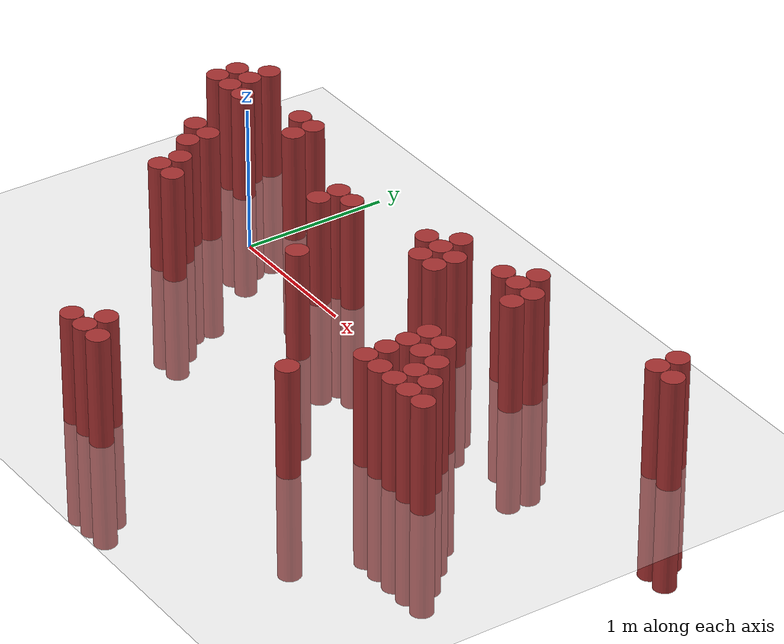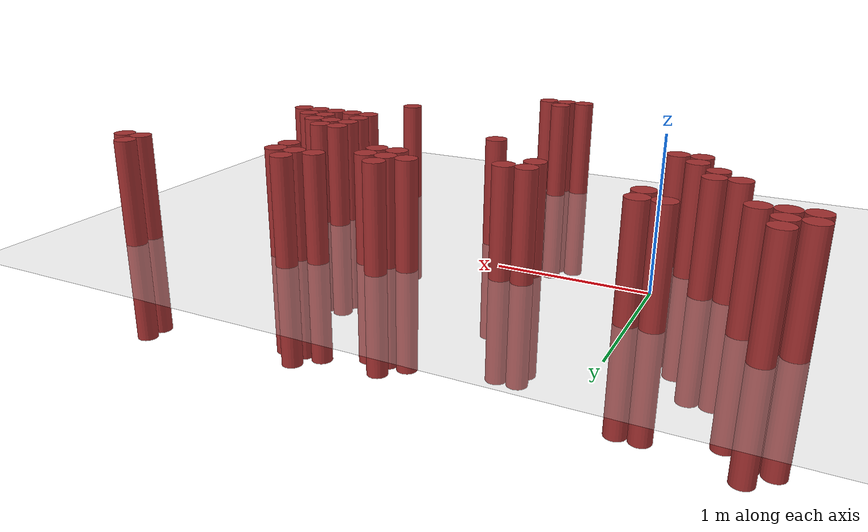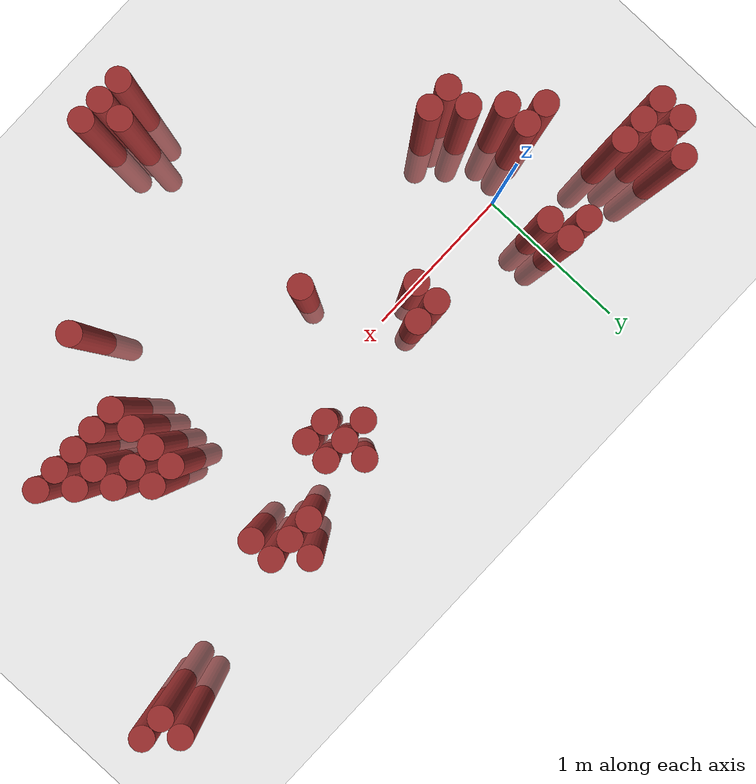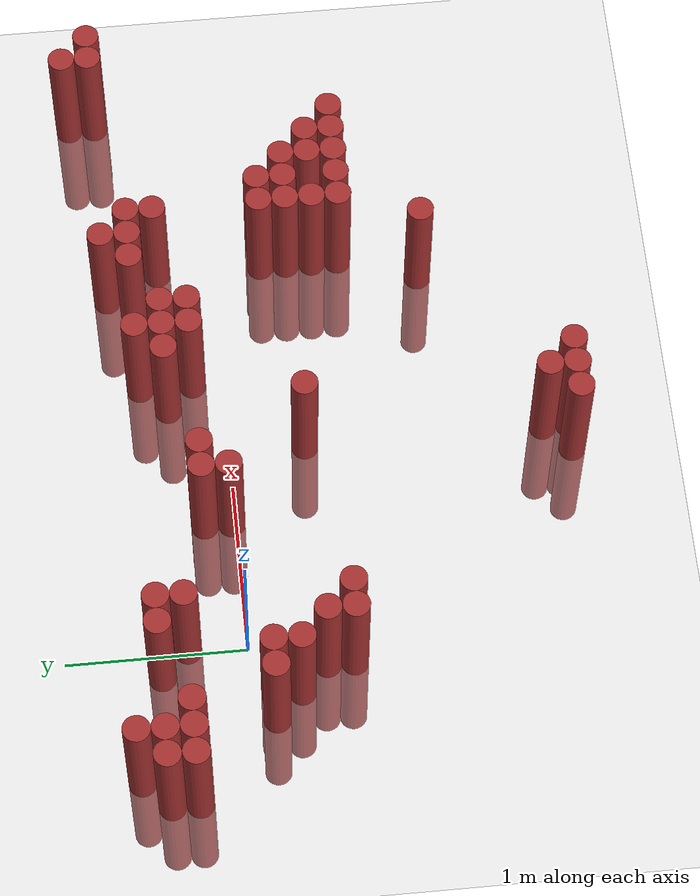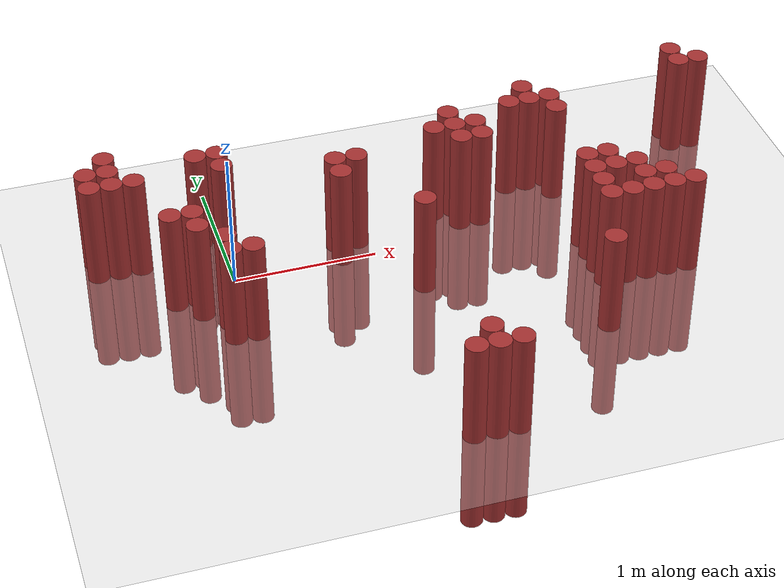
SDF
<sdf version="1.6">
 <world name="default">
  <model name="ground_plane">
   <static>1</static>
   <link name="link">
    <collision name="collision">
     <geometry><plane><normal>0 0 1</normal><size>100 100</size></plane></geometry>
     <surface><friction><ode><mu>100</mu><mu2>50</mu2></ode></friction></surface>
    </collision>
    <visual name="visual">
     <cast_shadows>0</cast_shadows>
     <geometry><plane><normal>0 0 1</normal><size>100 100</size></plane></geometry>
     <material>
      <script><uri>file://media/materials/scripts/gazebo.material</uri><name>Gazebo/Grey</name></script>
     </material>
    </visual>
   </link>
  </model>
  <model name="unit_cylinder_355">
   <static>1</static>
   <pose>-0.875000 0.325000 0.000000 0.000000 0.000000 0.000000</pose>
   <link name="link">
    <inertial>
     <mass>1</mass>
     <inertia><ixx>0.145833</ixx><ixy>0</ixy><ixz>0</ixz><iyy>0.145833</iyy><iyz>0</iyz><izz>0.125</izz></inertia>
    </inertial>
    <collision name="collision">
     <geometry><cylinder><radius>0.075000</radius><length>1.5</length></cylinder></geometry>
    </collision>
    <visual name="visual">
     <geometry><cylinder><radius>0.075000</radius><length>1.5</length></cylinder></geometry>
     <material>
      <ambient>0.648000 0.192000 0.192000 1</ambient>
      <diffuse>0.648000 0.192000 0.192000 1</diffuse>
     </material>
     <material>
      <script><name>Gazebo/Grey</name><uri>file://media/materials/scripts/gazebo.material</uri></script>
     </material>
    </visual>
   </link>
  </model>
  <model name="unit_cylinder_356">
   <static>1</static>
   <pose>-0.875000 0.475000 0.000000 0.000000 0.000000 0.000000</pose>
   <link name="link">
    <inertial>
     <mass>1</mass>
     <inertia><ixx>0.145833</ixx><ixy>0</ixy><ixz>0</ixz><iyy>0.145833</iyy><iyz>0</iyz><izz>0.125</izz></inertia>
    </inertial>
    <collision name="collision">
     <geometry><cylinder><radius>0.075000</radius><length>1.5</length></cylinder></geometry>
    </collision>
    <visual name="visual">
     <geometry><cylinder><radius>0.075000</radius><length>1.5</length></cylinder></geometry>
     <material>
      <ambient>0.648000 0.192000 0.192000 1</ambient>
      <diffuse>0.648000 0.192000 0.192000 1</diffuse>
     </material>
     <material>
      <script><name>Gazebo/Grey</name><uri>file://media/materials/scripts/gazebo.material</uri></script>
     </material>
    </visual>
   </link>
  </model>
  <model name="unit_cylinder_358">
   <static>1</static>
   <pose>-0.725000 0.325000 0.000000 0.000000 0.000000 0.000000</pose>
   <link name="link">
    <inertial>
     <mass>1</mass>
     <inertia><ixx>0.145833</ixx><ixy>0</ixy><ixz>0</ixz><iyy>0.145833</iyy><iyz>0</iyz><izz>0.125</izz></inertia>
    </inertial>
    <collision name="collision">
     <geometry><cylinder><radius>0.075000</radius><length>1.5</length></cylinder></geometry>
    </collision>
    <visual name="visual">
     <geometry><cylinder><radius>0.075000</radius><length>1.5</length></cylinder></geometry>
     <material>
      <ambient>0.648000 0.192000 0.192000 1</ambient>
      <diffuse>0.648000 0.192000 0.192000 1</diffuse>
     </material>
     <material>
      <script><name>Gazebo/Grey</name><uri>file://media/materials/scripts/gazebo.material</uri></script>
     </material>
    </visual>
   </link>
  </model>
  <model name="unit_cylinder_359">
   <static>1</static>
   <pose>-0.725000 0.475000 0.000000 0.000000 0.000000 0.000000</pose>
   <link name="link">
    <inertial>
     <mass>1</mass>
     <inertia><ixx>0.145833</ixx><ixy>0</ixy><ixz>0</ixz><iyy>0.145833</iyy><iyz>0</iyz><izz>0.125</izz></inertia>
    </inertial>
    <collision name="collision">
     <geometry><cylinder><radius>0.075000</radius><length>1.5</length></cylinder></geometry>
    </collision>
    <visual name="visual">
     <geometry><cylinder><radius>0.075000</radius><length>1.5</length></cylinder></geometry>
     <material>
      <ambient>0.648000 0.192000 0.192000 1</ambient>
      <diffuse>0.648000 0.192000 0.192000 1</diffuse>
     </material>
     <material>
      <script><name>Gazebo/Grey</name><uri>file://media/materials/scripts/gazebo.material</uri></script>
     </material>
    </visual>
   </link>
  </model>
  <model name="unit_cylinder_360">
   <static>1</static>
   <pose>-0.725000 0.625000 0.000000 0.000000 0.000000 0.000000</pose>
   <link name="link">
    <inertial>
     <mass>1</mass>
     <inertia><ixx>0.145833</ixx><ixy>0</ixy><ixz>0</ixz><iyy>0.145833</iyy><iyz>0</iyz><izz>0.125</izz></inertia>
    </inertial>
    <collision name="collision">
     <geometry><cylinder><radius>0.075000</radius><length>1.5</length></cylinder></geometry>
    </collision>
    <visual name="visual">
     <geometry><cylinder><radius>0.075000</radius><length>1.5</length></cylinder></geometry>
     <material>
      <ambient>0.648000 0.192000 0.192000 1</ambient>
      <diffuse>0.648000 0.192000 0.192000 1</diffuse>
     </material>
     <material>
      <script><name>Gazebo/Grey</name><uri>file://media/materials/scripts/gazebo.material</uri></script>
     </material>
    </visual>
   </link>
  </model>
  <model name="unit_cylinder_363">
   <static>1</static>
   <pose>-0.575000 0.325000 0.000000 0.000000 0.000000 0.000000</pose>
   <link name="link">
    <inertial>
     <mass>1</mass>
     <inertia><ixx>0.145833</ixx><ixy>0</ixy><ixz>0</ixz><iyy>0.145833</iyy><iyz>0</iyz><izz>0.125</izz></inertia>
    </inertial>
    <collision name="collision">
     <geometry><cylinder><radius>0.075000</radius><length>1.5</length></cylinder></geometry>
    </collision>
    <visual name="visual">
     <geometry><cylinder><radius>0.075000</radius><length>1.5</length></cylinder></geometry>
     <material>
      <ambient>0.648000 0.192000 0.192000 1</ambient>
      <diffuse>0.648000 0.192000 0.192000 1</diffuse>
     </material>
     <material>
      <script><name>Gazebo/Grey</name><uri>file://media/materials/scripts/gazebo.material</uri></script>
     </material>
    </visual>
   </link>
  </model>
  <model name="unit_cylinder_364">
   <static>1</static>
   <pose>-0.425000 -0.125000 0.000000 0.000000 0.000000 0.000000</pose>
   <link name="link">
    <inertial>
     <mass>1</mass>
     <inertia><ixx>0.145833</ixx><ixy>0</ixy><ixz>0</ixz><iyy>0.145833</iyy><iyz>0</iyz><izz>0.125</izz></inertia>
    </inertial>
    <collision name="collision">
     <geometry><cylinder><radius>0.075000</radius><length>1.5</length></cylinder></geometry>
    </collision>
    <visual name="visual">
     <geometry><cylinder><radius>0.075000</radius><length>1.5</length></cylinder></geometry>
     <material>
      <ambient>0.648000 0.192000 0.192000 1</ambient>
      <diffuse>0.648000 0.192000 0.192000 1</diffuse>
     </material>
     <material>
      <script><name>Gazebo/Grey</name><uri>file://media/materials/scripts/gazebo.material</uri></script>
     </material>
    </visual>
   </link>
  </model>
  <model name="unit_cylinder_365">
   <static>1</static>
   <pose>-0.275000 -0.275000 0.000000 0.000000 0.000000 0.000000</pose>
   <link name="link">
    <inertial>
     <mass>1</mass>
     <inertia><ixx>0.145833</ixx><ixy>0</ixy><ixz>0</ixz><iyy>0.145833</iyy><iyz>0</iyz><izz>0.125</izz></inertia>
    </inertial>
    <collision name="collision">
     <geometry><cylinder><radius>0.075000</radius><length>1.5</length></cylinder></geometry>
    </collision>
    <visual name="visual">
     <geometry><cylinder><radius>0.075000</radius><length>1.5</length></cylinder></geometry>
     <material>
      <ambient>0.648000 0.192000 0.192000 1</ambient>
      <diffuse>0.648000 0.192000 0.192000 1</diffuse>
     </material>
     <material>
      <script><name>Gazebo/Grey</name><uri>file://media/materials/scripts/gazebo.material</uri></script>
     </material>
    </visual>
   </link>
  </model>
  <model name="unit_cylinder_366">
   <static>1</static>
   <pose>-0.275000 -0.125000 0.000000 0.000000 0.000000 0.000000</pose>
   <link name="link">
    <inertial>
     <mass>1</mass>
     <inertia><ixx>0.145833</ixx><ixy>0</ixy><ixz>0</ixz><iyy>0.145833</iyy><iyz>0</iyz><izz>0.125</izz></inertia>
    </inertial>
    <collision name="collision">
     <geometry><cylinder><radius>0.075000</radius><length>1.5</length></cylinder></geometry>
    </collision>
    <visual name="visual">
     <geometry><cylinder><radius>0.075000</radius><length>1.5</length></cylinder></geometry>
     <material>
      <ambient>0.648000 0.192000 0.192000 1</ambient>
      <diffuse>0.648000 0.192000 0.192000 1</diffuse>
     </material>
     <material>
      <script><name>Gazebo/Grey</name><uri>file://media/materials/scripts/gazebo.material</uri></script>
     </material>
    </visual>
   </link>
  </model>
  <model name="unit_cylinder_367">
   <static>1</static>
   <pose>-0.125000 -0.575000 0.000000 0.000000 0.000000 0.000000</pose>
   <link name="link">
    <inertial>
     <mass>1</mass>
     <inertia><ixx>0.145833</ixx><ixy>0</ixy><ixz>0</ixz><iyy>0.145833</iyy><iyz>0</iyz><izz>0.125</izz></inertia>
    </inertial>
    <collision name="collision">
     <geometry><cylinder><radius>0.075000</radius><length>1.5</length></cylinder></geometry>
    </collision>
    <visual name="visual">
     <geometry><cylinder><radius>0.075000</radius><length>1.5</length></cylinder></geometry>
     <material>
      <ambient>0.648000 0.192000 0.192000 1</ambient>
      <diffuse>0.648000 0.192000 0.192000 1</diffuse>
     </material>
     <material>
      <script><name>Gazebo/Grey</name><uri>file://media/materials/scripts/gazebo.material</uri></script>
     </material>
    </visual>
   </link>
  </model>
  <model name="unit_cylinder_368">
   <static>1</static>
   <pose>-0.125000 -0.425000 0.000000 0.000000 0.000000 0.000000</pose>
   <link name="link">
    <inertial>
     <mass>1</mass>
     <inertia><ixx>0.145833</ixx><ixy>0</ixy><ixz>0</ixz><iyy>0.145833</iyy><iyz>0</iyz><izz>0.125</izz></inertia>
    </inertial>
    <collision name="collision">
     <geometry><cylinder><radius>0.075000</radius><length>1.5</length></cylinder></geometry>
    </collision>
    <visual name="visual">
     <geometry><cylinder><radius>0.075000</radius><length>1.5</length></cylinder></geometry>
     <material>
      <ambient>0.648000 0.192000 0.192000 1</ambient>
      <diffuse>0.648000 0.192000 0.192000 1</diffuse>
     </material>
     <material>
      <script><name>Gazebo/Grey</name><uri>file://media/materials/scripts/gazebo.material</uri></script>
     </material>
    </visual>
   </link>
  </model>
  <model name="unit_cylinder_369">
   <static>1</static>
   <pose>-0.125000 0.475000 0.000000 0.000000 0.000000 0.000000</pose>
   <link name="link">
    <inertial>
     <mass>1</mass>
     <inertia><ixx>0.145833</ixx><ixy>0</ixy><ixz>0</ixz><iyy>0.145833</iyy><iyz>0</iyz><izz>0.125</izz></inertia>
    </inertial>
    <collision name="collision">
     <geometry><cylinder><radius>0.075000</radius><length>1.5</length></cylinder></geometry>
    </collision>
    <visual name="visual">
     <geometry><cylinder><radius>0.075000</radius><length>1.5</length></cylinder></geometry>
     <material>
      <ambient>0.648000 0.192000 0.192000 1</ambient>
      <diffuse>0.648000 0.192000 0.192000 1</diffuse>
     </material>
     <material>
      <script><name>Gazebo/Grey</name><uri>file://media/materials/scripts/gazebo.material</uri></script>
     </material>
    </visual>
   </link>
  </model>
  <model name="unit_cylinder_370">
   <static>1</static>
   <pose>0.025000 -0.575000 0.000000 0.000000 0.000000 0.000000</pose>
   <link name="link">
    <inertial>
     <mass>1</mass>
     <inertia><ixx>0.145833</ixx><ixy>0</ixy><ixz>0</ixz><iyy>0.145833</iyy><iyz>0</iyz><izz>0.125</izz></inertia>
    </inertial>
    <collision name="collision">
     <geometry><cylinder><radius>0.075000</radius><length>1.5</length></cylinder></geometry>
    </collision>
    <visual name="visual">
     <geometry><cylinder><radius>0.075000</radius><length>1.5</length></cylinder></geometry>
     <material>
      <ambient>0.648000 0.192000 0.192000 1</ambient>
      <diffuse>0.648000 0.192000 0.192000 1</diffuse>
     </material>
     <material>
      <script><name>Gazebo/Grey</name><uri>file://media/materials/scripts/gazebo.material</uri></script>
     </material>
    </visual>
   </link>
  </model>
  <model name="unit_cylinder_371">
   <static>1</static>
   <pose>0.025000 0.325000 0.000000 0.000000 0.000000 0.000000</pose>
   <link name="link">
    <inertial>
     <mass>1</mass>
     <inertia><ixx>0.145833</ixx><ixy>0</ixy><ixz>0</ixz><iyy>0.145833</iyy><iyz>0</iyz><izz>0.125</izz></inertia>
    </inertial>
    <collision name="collision">
     <geometry><cylinder><radius>0.075000</radius><length>1.5</length></cylinder></geometry>
    </collision>
    <visual name="visual">
     <geometry><cylinder><radius>0.075000</radius><length>1.5</length></cylinder></geometry>
     <material>
      <ambient>0.648000 0.192000 0.192000 1</ambient>
      <diffuse>0.648000 0.192000 0.192000 1</diffuse>
     </material>
     <material>
      <script><name>Gazebo/Grey</name><uri>file://media/materials/scripts/gazebo.material</uri></script>
     </material>
    </visual>
   </link>
  </model>
  <model name="unit_cylinder_372">
   <static>1</static>
   <pose>0.025000 0.475000 0.000000 0.000000 0.000000 0.000000</pose>
   <link name="link">
    <inertial>
     <mass>1</mass>
     <inertia><ixx>0.145833</ixx><ixy>0</ixy><ixz>0</ixz><iyy>0.145833</iyy><iyz>0</iyz><izz>0.125</izz></inertia>
    </inertial>
    <collision name="collision">
     <geometry><cylinder><radius>0.075000</radius><length>1.5</length></cylinder></geometry>
    </collision>
    <visual name="visual">
     <geometry><cylinder><radius>0.075000</radius><length>1.5</length></cylinder></geometry>
     <material>
      <ambient>0.648000 0.192000 0.192000 1</ambient>
      <diffuse>0.648000 0.192000 0.192000 1</diffuse>
     </material>
     <material>
      <script><name>Gazebo/Grey</name><uri>file://media/materials/scripts/gazebo.material</uri></script>
     </material>
    </visual>
   </link>
  </model>
  <model name="unit_cylinder_376">
   <static>1</static>
   <pose>0.775000 0.025000 0.000000 0.000000 0.000000 0.000000</pose>
   <link name="link">
    <inertial>
     <mass>1</mass>
     <inertia><ixx>0.145833</ixx><ixy>0</ixy><ixz>0</ixz><iyy>0.145833</iyy><iyz>0</iyz><izz>0.125</izz></inertia>
    </inertial>
    <collision name="collision">
     <geometry><cylinder><radius>0.075000</radius><length>1.5</length></cylinder></geometry>
    </collision>
    <visual name="visual">
     <geometry><cylinder><radius>0.075000</radius><length>1.5</length></cylinder></geometry>
     <material>
      <ambient>0.648000 0.192000 0.192000 1</ambient>
      <diffuse>0.648000 0.192000 0.192000 1</diffuse>
     </material>
     <material>
      <script><name>Gazebo/Grey</name><uri>file://media/materials/scripts/gazebo.material</uri></script>
     </material>
    </visual>
   </link>
  </model>
  <model name="unit_cylinder_377">
   <static>1</static>
   <pose>0.775000 0.175000 0.000000 0.000000 0.000000 0.000000</pose>
   <link name="link">
    <inertial>
     <mass>1</mass>
     <inertia><ixx>0.145833</ixx><ixy>0</ixy><ixz>0</ixz><iyy>0.145833</iyy><iyz>0</iyz><izz>0.125</izz></inertia>
    </inertial>
    <collision name="collision">
     <geometry><cylinder><radius>0.075000</radius><length>1.5</length></cylinder></geometry>
    </collision>
    <visual name="visual">
     <geometry><cylinder><radius>0.075000</radius><length>1.5</length></cylinder></geometry>
     <material>
      <ambient>0.648000 0.192000 0.192000 1</ambient>
      <diffuse>0.648000 0.192000 0.192000 1</diffuse>
     </material>
     <material>
      <script><name>Gazebo/Grey</name><uri>file://media/materials/scripts/gazebo.material</uri></script>
     </material>
    </visual>
   </link>
  </model>
  <model name="unit_cylinder_379">
   <static>1</static>
   <pose>0.925000 0.175000 0.000000 0.000000 0.000000 0.000000</pose>
   <link name="link">
    <inertial>
     <mass>1</mass>
     <inertia><ixx>0.145833</ixx><ixy>0</ixy><ixz>0</ixz><iyy>0.145833</iyy><iyz>0</iyz><izz>0.125</izz></inertia>
    </inertial>
    <collision name="collision">
     <geometry><cylinder><radius>0.075000</radius><length>1.5</length></cylinder></geometry>
    </collision>
    <visual name="visual">
     <geometry><cylinder><radius>0.075000</radius><length>1.5</length></cylinder></geometry>
     <material>
      <ambient>0.648000 0.192000 0.192000 1</ambient>
      <diffuse>0.648000 0.192000 0.192000 1</diffuse>
     </material>
     <material>
      <script><name>Gazebo/Grey</name><uri>file://media/materials/scripts/gazebo.material</uri></script>
     </material>
    </visual>
   </link>
  </model>
  <model name="unit_cylinder_380">
   <static>1</static>
   <pose>1.075000 -1.925000 0.000000 0.000000 0.000000 0.000000</pose>
   <link name="link">
    <inertial>
     <mass>1</mass>
     <inertia><ixx>0.145833</ixx><ixy>0</ixy><ixz>0</ixz><iyy>0.145833</iyy><iyz>0</iyz><izz>0.125</izz></inertia>
    </inertial>
    <collision name="collision">
     <geometry><cylinder><radius>0.075000</radius><length>1.5</length></cylinder></geometry>
    </collision>
    <visual name="visual">
     <geometry><cylinder><radius>0.075000</radius><length>1.5</length></cylinder></geometry>
     <material>
      <ambient>0.648000 0.192000 0.192000 1</ambient>
      <diffuse>0.648000 0.192000 0.192000 1</diffuse>
     </material>
     <material>
      <script><name>Gazebo/Grey</name><uri>file://media/materials/scripts/gazebo.material</uri></script>
     </material>
    </visual>
   </link>
  </model>
  <model name="unit_cylinder_381">
   <static>1</static>
   <pose>1.225000 -1.925000 0.000000 0.000000 0.000000 0.000000</pose>
   <link name="link">
    <inertial>
     <mass>1</mass>
     <inertia><ixx>0.145833</ixx><ixy>0</ixy><ixz>0</ixz><iyy>0.145833</iyy><iyz>0</iyz><izz>0.125</izz></inertia>
    </inertial>
    <collision name="collision">
     <geometry><cylinder><radius>0.075000</radius><length>1.5</length></cylinder></geometry>
    </collision>
    <visual name="visual">
     <geometry><cylinder><radius>0.075000</radius><length>1.5</length></cylinder></geometry>
     <material>
      <ambient>0.648000 0.192000 0.192000 1</ambient>
      <diffuse>0.648000 0.192000 0.192000 1</diffuse>
     </material>
     <material>
      <script><name>Gazebo/Grey</name><uri>file://media/materials/scripts/gazebo.material</uri></script>
     </material>
    </visual>
   </link>
  </model>
  <model name="unit_cylinder_382">
   <static>1</static>
   <pose>1.225000 -1.775000 0.000000 0.000000 0.000000 0.000000</pose>
   <link name="link">
    <inertial>
     <mass>1</mass>
     <inertia><ixx>0.145833</ixx><ixy>0</ixy><ixz>0</ixz><iyy>0.145833</iyy><iyz>0</iyz><izz>0.125</izz></inertia>
    </inertial>
    <collision name="collision">
     <geometry><cylinder><radius>0.075000</radius><length>1.5</length></cylinder></geometry>
    </collision>
    <visual name="visual">
     <geometry><cylinder><radius>0.075000</radius><length>1.5</length></cylinder></geometry>
     <material>
      <ambient>0.648000 0.192000 0.192000 1</ambient>
      <diffuse>0.648000 0.192000 0.192000 1</diffuse>
     </material>
     <material>
      <script><name>Gazebo/Grey</name><uri>file://media/materials/scripts/gazebo.material</uri></script>
     </material>
    </visual>
   </link>
  </model>
  <model name="unit_cylinder_383">
   <static>1</static>
   <pose>1.225000 -0.425000 0.000000 0.000000 0.000000 0.000000</pose>
   <link name="link">
    <inertial>
     <mass>1</mass>
     <inertia><ixx>0.145833</ixx><ixy>0</ixy><ixz>0</ixz><iyy>0.145833</iyy><iyz>0</iyz><izz>0.125</izz></inertia>
    </inertial>
    <collision name="collision">
     <geometry><cylinder><radius>0.075000</radius><length>1.5</length></cylinder></geometry>
    </collision>
    <visual name="visual">
     <geometry><cylinder><radius>0.075000</radius><length>1.5</length></cylinder></geometry>
     <material>
      <ambient>0.648000 0.192000 0.192000 1</ambient>
      <diffuse>0.648000 0.192000 0.192000 1</diffuse>
     </material>
     <material>
      <script><name>Gazebo/Grey</name><uri>file://media/materials/scripts/gazebo.material</uri></script>
     </material>
    </visual>
   </link>
  </model>
  <model name="unit_cylinder_384">
   <static>1</static>
   <pose>1.375000 -1.925000 0.000000 0.000000 0.000000 0.000000</pose>
   <link name="link">
    <inertial>
     <mass>1</mass>
     <inertia><ixx>0.145833</ixx><ixy>0</ixy><ixz>0</ixz><iyy>0.145833</iyy><iyz>0</iyz><izz>0.125</izz></inertia>
    </inertial>
    <collision name="collision">
     <geometry><cylinder><radius>0.075000</radius><length>1.5</length></cylinder></geometry>
    </collision>
    <visual name="visual">
     <geometry><cylinder><radius>0.075000</radius><length>1.5</length></cylinder></geometry>
     <material>
      <ambient>0.648000 0.192000 0.192000 1</ambient>
      <diffuse>0.648000 0.192000 0.192000 1</diffuse>
     </material>
     <material>
      <script><name>Gazebo/Grey</name><uri>file://media/materials/scripts/gazebo.material</uri></script>
     </material>
    </visual>
   </link>
  </model>
  <model name="unit_cylinder_387">
   <static>1</static>
   <pose>1.525000 0.325000 0.000000 0.000000 0.000000 0.000000</pose>
   <link name="link">
    <inertial>
     <mass>1</mass>
     <inertia><ixx>0.145833</ixx><ixy>0</ixy><ixz>0</ixz><iyy>0.145833</iyy><iyz>0</iyz><izz>0.125</izz></inertia>
    </inertial>
    <collision name="collision">
     <geometry><cylinder><radius>0.075000</radius><length>1.5</length></cylinder></geometry>
    </collision>
    <visual name="visual">
     <geometry><cylinder><radius>0.075000</radius><length>1.5</length></cylinder></geometry>
     <material>
      <ambient>0.648000 0.192000 0.192000 1</ambient>
      <diffuse>0.648000 0.192000 0.192000 1</diffuse>
     </material>
     <material>
      <script><name>Gazebo/Grey</name><uri>file://media/materials/scripts/gazebo.material</uri></script>
     </material>
    </visual>
   </link>
  </model>
  <model name="unit_cylinder_390">
   <static>1</static>
   <pose>1.675000 0.175000 0.000000 0.000000 0.000000 0.000000</pose>
   <link name="link">
    <inertial>
     <mass>1</mass>
     <inertia><ixx>0.145833</ixx><ixy>0</ixy><ixz>0</ixz><iyy>0.145833</iyy><iyz>0</iyz><izz>0.125</izz></inertia>
    </inertial>
    <collision name="collision">
     <geometry><cylinder><radius>0.075000</radius><length>1.5</length></cylinder></geometry>
    </collision>
    <visual name="visual">
     <geometry><cylinder><radius>0.075000</radius><length>1.5</length></cylinder></geometry>
     <material>
      <ambient>0.648000 0.192000 0.192000 1</ambient>
      <diffuse>0.648000 0.192000 0.192000 1</diffuse>
     </material>
     <material>
      <script><name>Gazebo/Grey</name><uri>file://media/materials/scripts/gazebo.material</uri></script>
     </material>
    </visual>
   </link>
  </model>
  <model name="unit_cylinder_391">
   <static>1</static>
   <pose>1.675000 0.325000 0.000000 0.000000 0.000000 0.000000</pose>
   <link name="link">
    <inertial>
     <mass>1</mass>
     <inertia><ixx>0.145833</ixx><ixy>0</ixy><ixz>0</ixz><iyy>0.145833</iyy><iyz>0</iyz><izz>0.125</izz></inertia>
    </inertial>
    <collision name="collision">
     <geometry><cylinder><radius>0.075000</radius><length>1.5</length></cylinder></geometry>
    </collision>
    <visual name="visual">
     <geometry><cylinder><radius>0.075000</radius><length>1.5</length></cylinder></geometry>
     <material>
      <ambient>0.648000 0.192000 0.192000 1</ambient>
      <diffuse>0.648000 0.192000 0.192000 1</diffuse>
     </material>
     <material>
      <script><name>Gazebo/Grey</name><uri>file://media/materials/scripts/gazebo.material</uri></script>
     </material>
    </visual>
   </link>
  </model>
  <model name="unit_cylinder_392">
   <static>1</static>
   <pose>1.675000 0.475000 0.000000 0.000000 0.000000 0.000000</pose>
   <link name="link">
    <inertial>
     <mass>1</mass>
     <inertia><ixx>0.145833</ixx><ixy>0</ixy><ixz>0</ixz><iyy>0.145833</iyy><iyz>0</iyz><izz>0.125</izz></inertia>
    </inertial>
    <collision name="collision">
     <geometry><cylinder><radius>0.075000</radius><length>1.5</length></cylinder></geometry>
    </collision>
    <visual name="visual">
     <geometry><cylinder><radius>0.075000</radius><length>1.5</length></cylinder></geometry>
     <material>
      <ambient>0.648000 0.192000 0.192000 1</ambient>
      <diffuse>0.648000 0.192000 0.192000 1</diffuse>
     </material>
     <material>
      <script><name>Gazebo/Grey</name><uri>file://media/materials/scripts/gazebo.material</uri></script>
     </material>
    </visual>
   </link>
  </model>
  <model name="unit_cylinder_394">
   <static>1</static>
   <pose>1.825000 0.175000 0.000000 0.000000 0.000000 0.000000</pose>
   <link name="link">
    <inertial>
     <mass>1</mass>
     <inertia><ixx>0.145833</ixx><ixy>0</ixy><ixz>0</ixz><iyy>0.145833</iyy><iyz>0</iyz><izz>0.125</izz></inertia>
    </inertial>
    <collision name="collision">
     <geometry><cylinder><radius>0.075000</radius><length>1.5</length></cylinder></geometry>
    </collision>
    <visual name="visual">
     <geometry><cylinder><radius>0.075000</radius><length>1.5</length></cylinder></geometry>
     <material>
      <ambient>0.648000 0.192000 0.192000 1</ambient>
      <diffuse>0.648000 0.192000 0.192000 1</diffuse>
     </material>
     <material>
      <script><name>Gazebo/Grey</name><uri>file://media/materials/scripts/gazebo.material</uri></script>
     </material>
    </visual>
   </link>
  </model>
  <model name="unit_cylinder_395">
   <static>1</static>
   <pose>1.825000 0.325000 0.000000 0.000000 0.000000 0.000000</pose>
   <link name="link">
    <inertial>
     <mass>1</mass>
     <inertia><ixx>0.145833</ixx><ixy>0</ixy><ixz>0</ixz><iyy>0.145833</iyy><iyz>0</iyz><izz>0.125</izz></inertia>
    </inertial>
    <collision name="collision">
     <geometry><cylinder><radius>0.075000</radius><length>1.5</length></cylinder></geometry>
    </collision>
    <visual name="visual">
     <geometry><cylinder><radius>0.075000</radius><length>1.5</length></cylinder></geometry>
     <material>
      <ambient>0.648000 0.192000 0.192000 1</ambient>
      <diffuse>0.648000 0.192000 0.192000 1</diffuse>
     </material>
     <material>
      <script><name>Gazebo/Grey</name><uri>file://media/materials/scripts/gazebo.material</uri></script>
     </material>
    </visual>
   </link>
  </model>
  <model name="unit_cylinder_402">
   <static>1</static>
   <pose>2.125000 0.475000 0.000000 0.000000 0.000000 0.000000</pose>
   <link name="link">
    <inertial>
     <mass>1</mass>
     <inertia><ixx>0.145833</ixx><ixy>0</ixy><ixz>0</ixz><iyy>0.145833</iyy><iyz>0</iyz><izz>0.125</izz></inertia>
    </inertial>
    <collision name="collision">
     <geometry><cylinder><radius>0.075000</radius><length>1.5</length></cylinder></geometry>
    </collision>
    <visual name="visual">
     <geometry><cylinder><radius>0.075000</radius><length>1.5</length></cylinder></geometry>
     <material>
      <ambient>0.648000 0.192000 0.192000 1</ambient>
      <diffuse>0.648000 0.192000 0.192000 1</diffuse>
     </material>
     <material>
      <script><name>Gazebo/Grey</name><uri>file://media/materials/scripts/gazebo.material</uri></script>
     </material>
    </visual>
   </link>
  </model>
  <model name="unit_cylinder_405">
   <static>1</static>
   <pose>2.275000 -1.175000 0.000000 0.000000 0.000000 0.000000</pose>
   <link name="link">
    <inertial>
     <mass>1</mass>
     <inertia><ixx>0.145833</ixx><ixy>0</ixy><ixz>0</ixz><iyy>0.145833</iyy><iyz>0</iyz><izz>0.125</izz></inertia>
    </inertial>
    <collision name="collision">
     <geometry><cylinder><radius>0.075000</radius><length>1.5</length></cylinder></geometry>
    </collision>
    <visual name="visual">
     <geometry><cylinder><radius>0.075000</radius><length>1.5</length></cylinder></geometry>
     <material>
      <ambient>0.648000 0.192000 0.192000 1</ambient>
      <diffuse>0.648000 0.192000 0.192000 1</diffuse>
     </material>
     <material>
      <script><name>Gazebo/Grey</name><uri>file://media/materials/scripts/gazebo.material</uri></script>
     </material>
    </visual>
   </link>
  </model>
  <model name="unit_cylinder_406">
   <static>1</static>
   <pose>2.275000 0.475000 0.000000 0.000000 0.000000 0.000000</pose>
   <link name="link">
    <inertial>
     <mass>1</mass>
     <inertia><ixx>0.145833</ixx><ixy>0</ixy><ixz>0</ixz><iyy>0.145833</iyy><iyz>0</iyz><izz>0.125</izz></inertia>
    </inertial>
    <collision name="collision">
     <geometry><cylinder><radius>0.075000</radius><length>1.5</length></cylinder></geometry>
    </collision>
    <visual name="visual">
     <geometry><cylinder><radius>0.075000</radius><length>1.5</length></cylinder></geometry>
     <material>
      <ambient>0.648000 0.192000 0.192000 1</ambient>
      <diffuse>0.648000 0.192000 0.192000 1</diffuse>
     </material>
     <material>
      <script><name>Gazebo/Grey</name><uri>file://media/materials/scripts/gazebo.material</uri></script>
     </material>
    </visual>
   </link>
  </model>
  <model name="unit_cylinder_407">
   <static>1</static>
   <pose>2.275000 0.625000 0.000000 0.000000 0.000000 0.000000</pose>
   <link name="link">
    <inertial>
     <mass>1</mass>
     <inertia><ixx>0.145833</ixx><ixy>0</ixy><ixz>0</ixz><iyy>0.145833</iyy><iyz>0</iyz><izz>0.125</izz></inertia>
    </inertial>
    <collision name="collision">
     <geometry><cylinder><radius>0.075000</radius><length>1.5</length></cylinder></geometry>
    </collision>
    <visual name="visual">
     <geometry><cylinder><radius>0.075000</radius><length>1.5</length></cylinder></geometry>
     <material>
      <ambient>0.648000 0.192000 0.192000 1</ambient>
      <diffuse>0.648000 0.192000 0.192000 1</diffuse>
     </material>
     <material>
      <script><name>Gazebo/Grey</name><uri>file://media/materials/scripts/gazebo.material</uri></script>
     </material>
    </visual>
   </link>
  </model>
  <model name="unit_cylinder_408">
   <static>1</static>
   <pose>2.425000 -0.725000 0.000000 0.000000 0.000000 0.000000</pose>
   <link name="link">
    <inertial>
     <mass>1</mass>
     <inertia><ixx>0.145833</ixx><ixy>0</ixy><ixz>0</ixz><iyy>0.145833</iyy><iyz>0</iyz><izz>0.125</izz></inertia>
    </inertial>
    <collision name="collision">
     <geometry><cylinder><radius>0.075000</radius><length>1.5</length></cylinder></geometry>
    </collision>
    <visual name="visual">
     <geometry><cylinder><radius>0.075000</radius><length>1.5</length></cylinder></geometry>
     <material>
      <ambient>0.648000 0.192000 0.192000 1</ambient>
      <diffuse>0.648000 0.192000 0.192000 1</diffuse>
     </material>
     <material>
      <script><name>Gazebo/Grey</name><uri>file://media/materials/scripts/gazebo.material</uri></script>
     </material>
    </visual>
   </link>
  </model>
  <model name="unit_cylinder_409">
   <static>1</static>
   <pose>2.425000 -0.575000 0.000000 0.000000 0.000000 0.000000</pose>
   <link name="link">
    <inertial>
     <mass>1</mass>
     <inertia><ixx>0.145833</ixx><ixy>0</ixy><ixz>0</ixz><iyy>0.145833</iyy><iyz>0</iyz><izz>0.125</izz></inertia>
    </inertial>
    <collision name="collision">
     <geometry><cylinder><radius>0.075000</radius><length>1.5</length></cylinder></geometry>
    </collision>
    <visual name="visual">
     <geometry><cylinder><radius>0.075000</radius><length>1.5</length></cylinder></geometry>
     <material>
      <ambient>0.648000 0.192000 0.192000 1</ambient>
      <diffuse>0.648000 0.192000 0.192000 1</diffuse>
     </material>
     <material>
      <script><name>Gazebo/Grey</name><uri>file://media/materials/scripts/gazebo.material</uri></script>
     </material>
    </visual>
   </link>
  </model>
  <model name="unit_cylinder_410">
   <static>1</static>
   <pose>2.425000 -0.425000 0.000000 0.000000 0.000000 0.000000</pose>
   <link name="link">
    <inertial>
     <mass>1</mass>
     <inertia><ixx>0.145833</ixx><ixy>0</ixy><ixz>0</ixz><iyy>0.145833</iyy><iyz>0</iyz><izz>0.125</izz></inertia>
    </inertial>
    <collision name="collision">
     <geometry><cylinder><radius>0.075000</radius><length>1.5</length></cylinder></geometry>
    </collision>
    <visual name="visual">
     <geometry><cylinder><radius>0.075000</radius><length>1.5</length></cylinder></geometry>
     <material>
      <ambient>0.648000 0.192000 0.192000 1</ambient>
      <diffuse>0.648000 0.192000 0.192000 1</diffuse>
     </material>
     <material>
      <script><name>Gazebo/Grey</name><uri>file://media/materials/scripts/gazebo.material</uri></script>
     </material>
    </visual>
   </link>
  </model>
  <model name="unit_cylinder_411">
   <static>1</static>
   <pose>2.425000 -0.275000 0.000000 0.000000 0.000000 0.000000</pose>
   <link name="link">
    <inertial>
     <mass>1</mass>
     <inertia><ixx>0.145833</ixx><ixy>0</ixy><ixz>0</ixz><iyy>0.145833</iyy><iyz>0</iyz><izz>0.125</izz></inertia>
    </inertial>
    <collision name="collision">
     <geometry><cylinder><radius>0.075000</radius><length>1.5</length></cylinder></geometry>
    </collision>
    <visual name="visual">
     <geometry><cylinder><radius>0.075000</radius><length>1.5</length></cylinder></geometry>
     <material>
      <ambient>0.648000 0.192000 0.192000 1</ambient>
      <diffuse>0.648000 0.192000 0.192000 1</diffuse>
     </material>
     <material>
      <script><name>Gazebo/Grey</name><uri>file://media/materials/scripts/gazebo.material</uri></script>
     </material>
    </visual>
   </link>
  </model>
  <model name="unit_cylinder_412">
   <static>1</static>
   <pose>2.425000 0.325000 0.000000 0.000000 0.000000 0.000000</pose>
   <link name="link">
    <inertial>
     <mass>1</mass>
     <inertia><ixx>0.145833</ixx><ixy>0</ixy><ixz>0</ixz><iyy>0.145833</iyy><iyz>0</iyz><izz>0.125</izz></inertia>
    </inertial>
    <collision name="collision">
     <geometry><cylinder><radius>0.075000</radius><length>1.5</length></cylinder></geometry>
    </collision>
    <visual name="visual">
     <geometry><cylinder><radius>0.075000</radius><length>1.5</length></cylinder></geometry>
     <material>
      <ambient>0.648000 0.192000 0.192000 1</ambient>
      <diffuse>0.648000 0.192000 0.192000 1</diffuse>
     </material>
     <material>
      <script><name>Gazebo/Grey</name><uri>file://media/materials/scripts/gazebo.material</uri></script>
     </material>
    </visual>
   </link>
  </model>
  <model name="unit_cylinder_413">
   <static>1</static>
   <pose>2.425000 0.475000 0.000000 0.000000 0.000000 0.000000</pose>
   <link name="link">
    <inertial>
     <mass>1</mass>
     <inertia><ixx>0.145833</ixx><ixy>0</ixy><ixz>0</ixz><iyy>0.145833</iyy><iyz>0</iyz><izz>0.125</izz></inertia>
    </inertial>
    <collision name="collision">
     <geometry><cylinder><radius>0.075000</radius><length>1.5</length></cylinder></geometry>
    </collision>
    <visual name="visual">
     <geometry><cylinder><radius>0.075000</radius><length>1.5</length></cylinder></geometry>
     <material>
      <ambient>0.648000 0.192000 0.192000 1</ambient>
      <diffuse>0.648000 0.192000 0.192000 1</diffuse>
     </material>
     <material>
      <script><name>Gazebo/Grey</name><uri>file://media/materials/scripts/gazebo.material</uri></script>
     </material>
    </visual>
   </link>
  </model>
  <model name="unit_cylinder_414">
   <static>1</static>
   <pose>2.575000 -0.725000 0.000000 0.000000 0.000000 0.000000</pose>
   <link name="link">
    <inertial>
     <mass>1</mass>
     <inertia><ixx>0.145833</ixx><ixy>0</ixy><ixz>0</ixz><iyy>0.145833</iyy><iyz>0</iyz><izz>0.125</izz></inertia>
    </inertial>
    <collision name="collision">
     <geometry><cylinder><radius>0.075000</radius><length>1.5</length></cylinder></geometry>
    </collision>
    <visual name="visual">
     <geometry><cylinder><radius>0.075000</radius><length>1.5</length></cylinder></geometry>
     <material>
      <ambient>0.648000 0.192000 0.192000 1</ambient>
      <diffuse>0.648000 0.192000 0.192000 1</diffuse>
     </material>
     <material>
      <script><name>Gazebo/Grey</name><uri>file://media/materials/scripts/gazebo.material</uri></script>
     </material>
    </visual>
   </link>
  </model>
  <model name="unit_cylinder_415">
   <static>1</static>
   <pose>2.575000 -0.425000 0.000000 0.000000 0.000000 0.000000</pose>
   <link name="link">
    <inertial>
     <mass>1</mass>
     <inertia><ixx>0.145833</ixx><ixy>0</ixy><ixz>0</ixz><iyy>0.145833</iyy><iyz>0</iyz><izz>0.125</izz></inertia>
    </inertial>
    <collision name="collision">
     <geometry><cylinder><radius>0.075000</radius><length>1.5</length></cylinder></geometry>
    </collision>
    <visual name="visual">
     <geometry><cylinder><radius>0.075000</radius><length>1.5</length></cylinder></geometry>
     <material>
      <ambient>0.648000 0.192000 0.192000 1</ambient>
      <diffuse>0.648000 0.192000 0.192000 1</diffuse>
     </material>
     <material>
      <script><name>Gazebo/Grey</name><uri>file://media/materials/scripts/gazebo.material</uri></script>
     </material>
    </visual>
   </link>
  </model>
  <model name="unit_cylinder_416">
   <static>1</static>
   <pose>2.575000 -0.275000 0.000000 0.000000 0.000000 0.000000</pose>
   <link name="link">
    <inertial>
     <mass>1</mass>
     <inertia><ixx>0.145833</ixx><ixy>0</ixy><ixz>0</ixz><iyy>0.145833</iyy><iyz>0</iyz><izz>0.125</izz></inertia>
    </inertial>
    <collision name="collision">
     <geometry><cylinder><radius>0.075000</radius><length>1.5</length></cylinder></geometry>
    </collision>
    <visual name="visual">
     <geometry><cylinder><radius>0.075000</radius><length>1.5</length></cylinder></geometry>
     <material>
      <ambient>0.648000 0.192000 0.192000 1</ambient>
      <diffuse>0.648000 0.192000 0.192000 1</diffuse>
     </material>
     <material>
      <script><name>Gazebo/Grey</name><uri>file://media/materials/scripts/gazebo.material</uri></script>
     </material>
    </visual>
   </link>
  </model>
  <model name="unit_cylinder_417">
   <static>1</static>
   <pose>2.725000 -0.725000 0.000000 0.000000 0.000000 0.000000</pose>
   <link name="link">
    <inertial>
     <mass>1</mass>
     <inertia><ixx>0.145833</ixx><ixy>0</ixy><ixz>0</ixz><iyy>0.145833</iyy><iyz>0</iyz><izz>0.125</izz></inertia>
    </inertial>
    <collision name="collision">
     <geometry><cylinder><radius>0.075000</radius><length>1.5</length></cylinder></geometry>
    </collision>
    <visual name="visual">
     <geometry><cylinder><radius>0.075000</radius><length>1.5</length></cylinder></geometry>
     <material>
      <ambient>0.648000 0.192000 0.192000 1</ambient>
      <diffuse>0.648000 0.192000 0.192000 1</diffuse>
     </material>
     <material>
      <script><name>Gazebo/Grey</name><uri>file://media/materials/scripts/gazebo.material</uri></script>
     </material>
    </visual>
   </link>
  </model>
  <model name="unit_cylinder_418">
   <static>1</static>
   <pose>2.725000 -0.575000 0.000000 0.000000 0.000000 0.000000</pose>
   <link name="link">
    <inertial>
     <mass>1</mass>
     <inertia><ixx>0.145833</ixx><ixy>0</ixy><ixz>0</ixz><iyy>0.145833</iyy><iyz>0</iyz><izz>0.125</izz></inertia>
    </inertial>
    <collision name="collision">
     <geometry><cylinder><radius>0.075000</radius><length>1.5</length></cylinder></geometry>
    </collision>
    <visual name="visual">
     <geometry><cylinder><radius>0.075000</radius><length>1.5</length></cylinder></geometry>
     <material>
      <ambient>0.648000 0.192000 0.192000 1</ambient>
      <diffuse>0.648000 0.192000 0.192000 1</diffuse>
     </material>
     <material>
      <script><name>Gazebo/Grey</name><uri>file://media/materials/scripts/gazebo.material</uri></script>
     </material>
    </visual>
   </link>
  </model>
  <model name="unit_cylinder_419">
   <static>1</static>
   <pose>2.725000 -0.425000 0.000000 0.000000 0.000000 0.000000</pose>
   <link name="link">
    <inertial>
     <mass>1</mass>
     <inertia><ixx>0.145833</ixx><ixy>0</ixy><ixz>0</ixz><iyy>0.145833</iyy><iyz>0</iyz><izz>0.125</izz></inertia>
    </inertial>
    <collision name="collision">
     <geometry><cylinder><radius>0.075000</radius><length>1.5</length></cylinder></geometry>
    </collision>
    <visual name="visual">
     <geometry><cylinder><radius>0.075000</radius><length>1.5</length></cylinder></geometry>
     <material>
      <ambient>0.648000 0.192000 0.192000 1</ambient>
      <diffuse>0.648000 0.192000 0.192000 1</diffuse>
     </material>
     <material>
      <script><name>Gazebo/Grey</name><uri>file://media/materials/scripts/gazebo.material</uri></script>
     </material>
    </visual>
   </link>
  </model>
  <model name="unit_cylinder_420">
   <static>1</static>
   <pose>2.875000 -0.725000 0.000000 0.000000 0.000000 0.000000</pose>
   <link name="link">
    <inertial>
     <mass>1</mass>
     <inertia><ixx>0.145833</ixx><ixy>0</ixy><ixz>0</ixz><iyy>0.145833</iyy><iyz>0</iyz><izz>0.125</izz></inertia>
    </inertial>
    <collision name="collision">
     <geometry><cylinder><radius>0.075000</radius><length>1.5</length></cylinder></geometry>
    </collision>
    <visual name="visual">
     <geometry><cylinder><radius>0.075000</radius><length>1.5</length></cylinder></geometry>
     <material>
      <ambient>0.648000 0.192000 0.192000 1</ambient>
      <diffuse>0.648000 0.192000 0.192000 1</diffuse>
     </material>
     <material>
      <script><name>Gazebo/Grey</name><uri>file://media/materials/scripts/gazebo.material</uri></script>
     </material>
    </visual>
   </link>
  </model>
  <model name="unit_cylinder_421">
   <static>1</static>
   <pose>2.875000 -0.575000 0.000000 0.000000 0.000000 0.000000</pose>
   <link name="link">
    <inertial>
     <mass>1</mass>
     <inertia><ixx>0.145833</ixx><ixy>0</ixy><ixz>0</ixz><iyy>0.145833</iyy><iyz>0</iyz><izz>0.125</izz></inertia>
    </inertial>
    <collision name="collision">
     <geometry><cylinder><radius>0.075000</radius><length>1.5</length></cylinder></geometry>
    </collision>
    <visual name="visual">
     <geometry><cylinder><radius>0.075000</radius><length>1.5</length></cylinder></geometry>
     <material>
      <ambient>0.648000 0.192000 0.192000 1</ambient>
      <diffuse>0.648000 0.192000 0.192000 1</diffuse>
     </material>
     <material>
      <script><name>Gazebo/Grey</name><uri>file://media/materials/scripts/gazebo.material</uri></script>
     </material>
    </visual>
   </link>
  </model>
  <model name="unit_cylinder_424">
   <static>1</static>
   <pose>3.025000 -0.725000 0.000000 0.000000 0.000000 0.000000</pose>
   <link name="link">
    <inertial>
     <mass>1</mass>
     <inertia><ixx>0.145833</ixx><ixy>0</ixy><ixz>0</ixz><iyy>0.145833</iyy><iyz>0</iyz><izz>0.125</izz></inertia>
    </inertial>
    <collision name="collision">
     <geometry><cylinder><radius>0.075000</radius><length>1.5</length></cylinder></geometry>
    </collision>
    <visual name="visual">
     <geometry><cylinder><radius>0.075000</radius><length>1.5</length></cylinder></geometry>
     <material>
      <ambient>0.648000 0.192000 0.192000 1</ambient>
      <diffuse>0.648000 0.192000 0.192000 1</diffuse>
     </material>
     <material>
      <script><name>Gazebo/Grey</name><uri>file://media/materials/scripts/gazebo.material</uri></script>
     </material>
    </visual>
   </link>
  </model>
  <model name="unit_cylinder_438">
   <static>1</static>
   <pose>3.475000 0.625000 0.000000 0.000000 0.000000 0.000000</pose>
   <link name="link">
    <inertial>
     <mass>1</mass>
     <inertia><ixx>0.145833</ixx><ixy>0</ixy><ixz>0</ixz><iyy>0.145833</iyy><iyz>0</iyz><izz>0.125</izz></inertia>
    </inertial>
    <collision name="collision">
     <geometry><cylinder><radius>0.075000</radius><length>1.5</length></cylinder></geometry>
    </collision>
    <visual name="visual">
     <geometry><cylinder><radius>0.075000</radius><length>1.5</length></cylinder></geometry>
     <material>
      <ambient>0.648000 0.192000 0.192000 1</ambient>
      <diffuse>0.648000 0.192000 0.192000 1</diffuse>
     </material>
     <material>
      <script><name>Gazebo/Grey</name><uri>file://media/materials/scripts/gazebo.material</uri></script>
     </material>
    </visual>
   </link>
  </model>
  <model name="unit_cylinder_439">
   <static>1</static>
   <pose>3.475000 0.775000 0.000000 0.000000 0.000000 0.000000</pose>
   <link name="link">
    <inertial>
     <mass>1</mass>
     <inertia><ixx>0.145833</ixx><ixy>0</ixy><ixz>0</ixz><iyy>0.145833</iyy><iyz>0</iyz><izz>0.125</izz></inertia>
    </inertial>
    <collision name="collision">
     <geometry><cylinder><radius>0.075000</radius><length>1.5</length></cylinder></geometry>
    </collision>
    <visual name="visual">
     <geometry><cylinder><radius>0.075000</radius><length>1.5</length></cylinder></geometry>
     <material>
      <ambient>0.648000 0.192000 0.192000 1</ambient>
      <diffuse>0.648000 0.192000 0.192000 1</diffuse>
     </material>
     <material>
      <script><name>Gazebo/Grey</name><uri>file://media/materials/scripts/gazebo.material</uri></script>
     </material>
    </visual>
   </link>
  </model>
  <model name="unit_cylinder_441">
   <static>1</static>
   <pose>3.625000 0.625000 0.000000 0.000000 0.000000 0.000000</pose>
   <link name="link">
    <inertial>
     <mass>1</mass>
     <inertia><ixx>0.145833</ixx><ixy>0</ixy><ixz>0</ixz><iyy>0.145833</iyy><iyz>0</iyz><izz>0.125</izz></inertia>
    </inertial>
    <collision name="collision">
     <geometry><cylinder><radius>0.075000</radius><length>1.5</length></cylinder></geometry>
    </collision>
    <visual name="visual">
     <geometry><cylinder><radius>0.075000</radius><length>1.5</length></cylinder></geometry>
     <material>
      <ambient>0.648000 0.192000 0.192000 1</ambient>
      <diffuse>0.648000 0.192000 0.192000 1</diffuse>
     </material>
     <material>
      <script><name>Gazebo/Grey</name><uri>file://media/materials/scripts/gazebo.material</uri></script>
     </material>
    </visual>
   </link>
  </model>
 </world>
</sdf>
